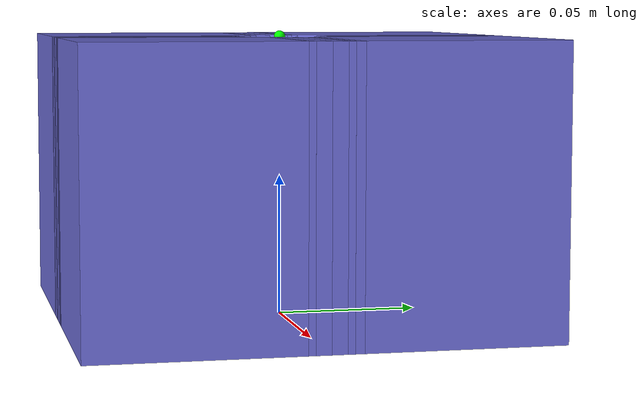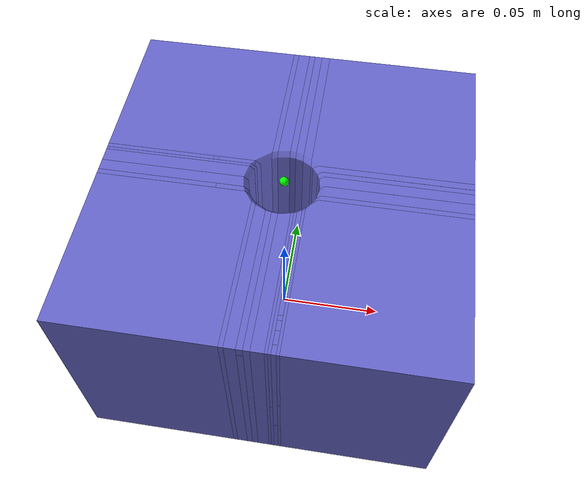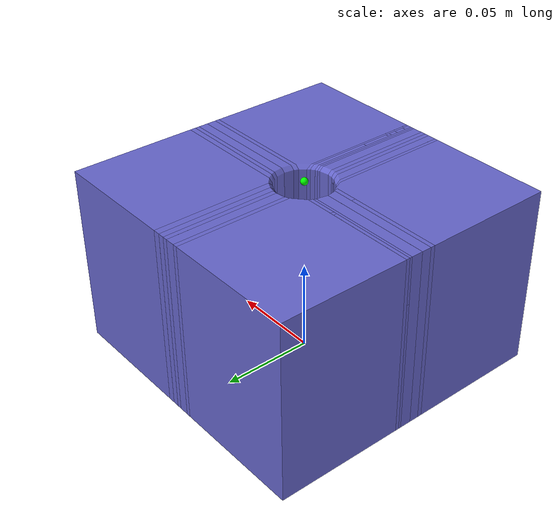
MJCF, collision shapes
<mujoco model="hole_cyl_l_medium">
  <asset>
    <mesh name="hole_cyl_l_medium_visual" file="meshes/hole_cyl_l_medium.stl" scale="0.001 0.001 0.001"/>
    <mesh name="hole_cyl_l_medium_col_0" file="meshes/hole_cyl_l_medium_col_0.stl" scale="0.001 0.001 0.001"/>
    <mesh name="hole_cyl_l_medium_col_1" file="meshes/hole_cyl_l_medium_col_1.stl" scale="0.001 0.001 0.001"/>
    <mesh name="hole_cyl_l_medium_col_2" file="meshes/hole_cyl_l_medium_col_2.stl" scale="0.001 0.001 0.001"/>
    <mesh name="hole_cyl_l_medium_col_3" file="meshes/hole_cyl_l_medium_col_3.stl" scale="0.001 0.001 0.001"/>
    <mesh name="hole_cyl_l_medium_col_4" file="meshes/hole_cyl_l_medium_col_4.stl" scale="0.001 0.001 0.001"/>
    <mesh name="hole_cyl_l_medium_col_5" file="meshes/hole_cyl_l_medium_col_5.stl" scale="0.001 0.001 0.001"/>
    <mesh name="hole_cyl_l_medium_col_6" file="meshes/hole_cyl_l_medium_col_6.stl" scale="0.001 0.001 0.001"/>
    <mesh name="hole_cyl_l_medium_col_7" file="meshes/hole_cyl_l_medium_col_7.stl" scale="0.001 0.001 0.001"/>
    <mesh name="hole_cyl_l_medium_col_8" file="meshes/hole_cyl_l_medium_col_8.stl" scale="0.001 0.001 0.001"/>
    <mesh name="hole_cyl_l_medium_col_9" file="meshes/hole_cyl_l_medium_col_9.stl" scale="0.001 0.001 0.001"/>
    <mesh name="hole_cyl_l_medium_col_10" file="meshes/hole_cyl_l_medium_col_10.stl" scale="0.001 0.001 0.001"/>
    <mesh name="hole_cyl_l_medium_col_11" file="meshes/hole_cyl_l_medium_col_11.stl" scale="0.001 0.001 0.001"/>
    <mesh name="hole_cyl_l_medium_col_12" file="meshes/hole_cyl_l_medium_col_12.stl" scale="0.001 0.001 0.001"/>
    <mesh name="hole_cyl_l_medium_col_13" file="meshes/hole_cyl_l_medium_col_13.stl" scale="0.001 0.001 0.001"/>
    <mesh name="hole_cyl_l_medium_col_14" file="meshes/hole_cyl_l_medium_col_14.stl" scale="0.001 0.001 0.001"/>
    <mesh name="hole_cyl_l_medium_col_15" file="meshes/hole_cyl_l_medium_col_15.stl" scale="0.001 0.001 0.001"/>
    <mesh name="hole_cyl_l_medium_col_16" file="meshes/hole_cyl_l_medium_col_16.stl" scale="0.001 0.001 0.001"/>
    <mesh name="hole_cyl_l_medium_col_17" file="meshes/hole_cyl_l_medium_col_17.stl" scale="0.001 0.001 0.001"/>
    <mesh name="hole_cyl_l_medium_col_18" file="meshes/hole_cyl_l_medium_col_18.stl" scale="0.001 0.001 0.001"/>
    <mesh name="hole_cyl_l_medium_col_19" file="meshes/hole_cyl_l_medium_col_19.stl" scale="0.001 0.001 0.001"/>
    <mesh name="hole_cyl_l_medium_col_20" file="meshes/hole_cyl_l_medium_col_20.stl" scale="0.001 0.001 0.001"/>
    <mesh name="hole_cyl_l_medium_col_21" file="meshes/hole_cyl_l_medium_col_21.stl" scale="0.001 0.001 0.001"/>
    <mesh name="hole_cyl_l_medium_col_22" file="meshes/hole_cyl_l_medium_col_22.stl" scale="0.001 0.001 0.001"/>
    <mesh name="hole_cyl_l_medium_col_23" file="meshes/hole_cyl_l_medium_col_23.stl" scale="0.001 0.001 0.001"/>
    <mesh name="hole_cyl_l_medium_col_24" file="meshes/hole_cyl_l_medium_col_24.stl" scale="0.001 0.001 0.001"/>
    <mesh name="hole_cyl_l_medium_col_25" file="meshes/hole_cyl_l_medium_col_25.stl" scale="0.001 0.001 0.001"/>
    <mesh name="hole_cyl_l_medium_col_26" file="meshes/hole_cyl_l_medium_col_26.stl" scale="0.001 0.001 0.001"/>
    <mesh name="hole_cyl_l_medium_col_27" file="meshes/hole_cyl_l_medium_col_27.stl" scale="0.001 0.001 0.001"/>
    <mesh name="hole_cyl_l_medium_col_28" file="meshes/hole_cyl_l_medium_col_28.stl" scale="0.001 0.001 0.001"/>
    <mesh name="hole_cyl_l_medium_col_29" file="meshes/hole_cyl_l_medium_col_29.stl" scale="0.001 0.001 0.001"/>
    <mesh name="hole_cyl_l_medium_col_30" file="meshes/hole_cyl_l_medium_col_30.stl" scale="0.001 0.001 0.001"/>
    <mesh name="hole_cyl_l_medium_col_31" file="meshes/hole_cyl_l_medium_col_31.stl" scale="0.001 0.001 0.001"/>
    <mesh name="hole_cyl_l_medium_col_32" file="meshes/hole_cyl_l_medium_col_32.stl" scale="0.001 0.001 0.001"/>
    <mesh name="hole_cyl_l_medium_col_33" file="meshes/hole_cyl_l_medium_col_33.stl" scale="0.001 0.001 0.001"/>
    <mesh name="hole_cyl_l_medium_col_34" file="meshes/hole_cyl_l_medium_col_34.stl" scale="0.001 0.001 0.001"/>
    <mesh name="hole_cyl_l_medium_col_35" file="meshes/hole_cyl_l_medium_col_35.stl" scale="0.001 0.001 0.001"/>
    <mesh name="hole_cyl_l_medium_col_36" file="meshes/hole_cyl_l_medium_col_36.stl" scale="0.001 0.001 0.001"/>
    <mesh name="hole_cyl_l_medium_col_37" file="meshes/hole_cyl_l_medium_col_37.stl" scale="0.001 0.001 0.001"/>
    <mesh name="hole_cyl_l_medium_col_38" file="meshes/hole_cyl_l_medium_col_38.stl" scale="0.001 0.001 0.001"/>
    <mesh name="hole_cyl_l_medium_col_39" file="meshes/hole_cyl_l_medium_col_39.stl" scale="0.001 0.001 0.001"/>
    <mesh name="hole_cyl_l_medium_col_40" file="meshes/hole_cyl_l_medium_col_40.stl" scale="0.001 0.001 0.001"/>
    <mesh name="hole_cyl_l_medium_col_41" file="meshes/hole_cyl_l_medium_col_41.stl" scale="0.001 0.001 0.001"/>
    <mesh name="hole_cyl_l_medium_col_42" file="meshes/hole_cyl_l_medium_col_42.stl" scale="0.001 0.001 0.001"/>
    <mesh name="hole_cyl_l_medium_col_43" file="meshes/hole_cyl_l_medium_col_43.stl" scale="0.001 0.001 0.001"/>
    <mesh name="hole_cyl_l_medium_col_44" file="meshes/hole_cyl_l_medium_col_44.stl" scale="0.001 0.001 0.001"/>
    <mesh name="hole_cyl_l_medium_col_45" file="meshes/hole_cyl_l_medium_col_45.stl" scale="0.001 0.001 0.001"/>
    <mesh name="hole_cyl_l_medium_col_46" file="meshes/hole_cyl_l_medium_col_46.stl" scale="0.001 0.001 0.001"/>
    <mesh name="hole_cyl_l_medium_col_47" file="meshes/hole_cyl_l_medium_col_47.stl" scale="0.001 0.001 0.001"/>
    <mesh name="hole_cyl_l_medium_col_48" file="meshes/hole_cyl_l_medium_col_48.stl" scale="0.001 0.001 0.001"/>
    <mesh name="hole_cyl_l_medium_col_49" file="meshes/hole_cyl_l_medium_col_49.stl" scale="0.001 0.001 0.001"/>
    <mesh name="hole_cyl_l_medium_col_50" file="meshes/hole_cyl_l_medium_col_50.stl" scale="0.001 0.001 0.001"/>
    <mesh name="hole_cyl_l_medium_col_51" file="meshes/hole_cyl_l_medium_col_51.stl" scale="0.001 0.001 0.001"/>
    <mesh name="hole_cyl_l_medium_col_52" file="meshes/hole_cyl_l_medium_col_52.stl" scale="0.001 0.001 0.001"/>
    <mesh name="hole_cyl_l_medium_col_53" file="meshes/hole_cyl_l_medium_col_53.stl" scale="0.001 0.001 0.001"/>
    <mesh name="hole_cyl_l_medium_col_54" file="meshes/hole_cyl_l_medium_col_54.stl" scale="0.001 0.001 0.001"/>
  </asset>

  <worldbody>
    <body name="fixture" pos="0 0 0">
      <geom name="hole_cyl_l_medium_visual" type="mesh" mesh="hole_cyl_l_medium_visual"
            contype="0" conaffinity="0"
            rgba="0.4 0.4 0.8 1.0"/>
      <geom name="hole_cyl_l_medium_col_0" type="mesh" mesh="hole_cyl_l_medium_col_0"
            rgba="0.4 0.4 0.8 0.0"
            friction="0.2 0.005 0.0001"
            solref="0.02 1"
            solimp="0.9 0.95 0.001"/>
      <geom name="hole_cyl_l_medium_col_1" type="mesh" mesh="hole_cyl_l_medium_col_1"
            rgba="0.4 0.4 0.8 0.0"
            friction="0.2 0.005 0.0001"
            solref="0.02 1"
            solimp="0.9 0.95 0.001"/>
      <geom name="hole_cyl_l_medium_col_2" type="mesh" mesh="hole_cyl_l_medium_col_2"
            rgba="0.4 0.4 0.8 0.0"
            friction="0.2 0.005 0.0001"
            solref="0.02 1"
            solimp="0.9 0.95 0.001"/>
      <geom name="hole_cyl_l_medium_col_3" type="mesh" mesh="hole_cyl_l_medium_col_3"
            rgba="0.4 0.4 0.8 0.0"
            friction="0.2 0.005 0.0001"
            solref="0.02 1"
            solimp="0.9 0.95 0.001"/>
      <geom name="hole_cyl_l_medium_col_4" type="mesh" mesh="hole_cyl_l_medium_col_4"
            rgba="0.4 0.4 0.8 0.0"
            friction="0.2 0.005 0.0001"
            solref="0.02 1"
            solimp="0.9 0.95 0.001"/>
      <geom name="hole_cyl_l_medium_col_5" type="mesh" mesh="hole_cyl_l_medium_col_5"
            rgba="0.4 0.4 0.8 0.0"
            friction="0.2 0.005 0.0001"
            solref="0.02 1"
            solimp="0.9 0.95 0.001"/>
      <geom name="hole_cyl_l_medium_col_6" type="mesh" mesh="hole_cyl_l_medium_col_6"
            rgba="0.4 0.4 0.8 0.0"
            friction="0.2 0.005 0.0001"
            solref="0.02 1"
            solimp="0.9 0.95 0.001"/>
      <geom name="hole_cyl_l_medium_col_7" type="mesh" mesh="hole_cyl_l_medium_col_7"
            rgba="0.4 0.4 0.8 0.0"
            friction="0.2 0.005 0.0001"
            solref="0.02 1"
            solimp="0.9 0.95 0.001"/>
      <geom name="hole_cyl_l_medium_col_8" type="mesh" mesh="hole_cyl_l_medium_col_8"
            rgba="0.4 0.4 0.8 0.0"
            friction="0.2 0.005 0.0001"
            solref="0.02 1"
            solimp="0.9 0.95 0.001"/>
      <geom name="hole_cyl_l_medium_col_9" type="mesh" mesh="hole_cyl_l_medium_col_9"
            rgba="0.4 0.4 0.8 0.0"
            friction="0.2 0.005 0.0001"
            solref="0.02 1"
            solimp="0.9 0.95 0.001"/>
      <geom name="hole_cyl_l_medium_col_10" type="mesh" mesh="hole_cyl_l_medium_col_10"
            rgba="0.4 0.4 0.8 0.0"
            friction="0.2 0.005 0.0001"
            solref="0.02 1"
            solimp="0.9 0.95 0.001"/>
      <geom name="hole_cyl_l_medium_col_11" type="mesh" mesh="hole_cyl_l_medium_col_11"
            rgba="0.4 0.4 0.8 0.0"
            friction="0.2 0.005 0.0001"
            solref="0.02 1"
            solimp="0.9 0.95 0.001"/>
      <geom name="hole_cyl_l_medium_col_12" type="mesh" mesh="hole_cyl_l_medium_col_12"
            rgba="0.4 0.4 0.8 0.0"
            friction="0.2 0.005 0.0001"
            solref="0.02 1"
            solimp="0.9 0.95 0.001"/>
      <geom name="hole_cyl_l_medium_col_13" type="mesh" mesh="hole_cyl_l_medium_col_13"
            rgba="0.4 0.4 0.8 0.0"
            friction="0.2 0.005 0.0001"
            solref="0.02 1"
            solimp="0.9 0.95 0.001"/>
      <geom name="hole_cyl_l_medium_col_14" type="mesh" mesh="hole_cyl_l_medium_col_14"
            rgba="0.4 0.4 0.8 0.0"
            friction="0.2 0.005 0.0001"
            solref="0.02 1"
            solimp="0.9 0.95 0.001"/>
      <geom name="hole_cyl_l_medium_col_15" type="mesh" mesh="hole_cyl_l_medium_col_15"
            rgba="0.4 0.4 0.8 0.0"
            friction="0.2 0.005 0.0001"
            solref="0.02 1"
            solimp="0.9 0.95 0.001"/>
      <geom name="hole_cyl_l_medium_col_16" type="mesh" mesh="hole_cyl_l_medium_col_16"
            rgba="0.4 0.4 0.8 0.0"
            friction="0.2 0.005 0.0001"
            solref="0.02 1"
            solimp="0.9 0.95 0.001"/>
      <geom name="hole_cyl_l_medium_col_17" type="mesh" mesh="hole_cyl_l_medium_col_17"
            rgba="0.4 0.4 0.8 0.0"
            friction="0.2 0.005 0.0001"
            solref="0.02 1"
            solimp="0.9 0.95 0.001"/>
      <geom name="hole_cyl_l_medium_col_18" type="mesh" mesh="hole_cyl_l_medium_col_18"
            rgba="0.4 0.4 0.8 0.0"
            friction="0.2 0.005 0.0001"
            solref="0.02 1"
            solimp="0.9 0.95 0.001"/>
      <geom name="hole_cyl_l_medium_col_19" type="mesh" mesh="hole_cyl_l_medium_col_19"
            rgba="0.4 0.4 0.8 0.0"
            friction="0.2 0.005 0.0001"
            solref="0.02 1"
            solimp="0.9 0.95 0.001"/>
      <geom name="hole_cyl_l_medium_col_20" type="mesh" mesh="hole_cyl_l_medium_col_20"
            rgba="0.4 0.4 0.8 0.0"
            friction="0.2 0.005 0.0001"
            solref="0.02 1"
            solimp="0.9 0.95 0.001"/>
      <geom name="hole_cyl_l_medium_col_21" type="mesh" mesh="hole_cyl_l_medium_col_21"
            rgba="0.4 0.4 0.8 0.0"
            friction="0.2 0.005 0.0001"
            solref="0.02 1"
            solimp="0.9 0.95 0.001"/>
      <geom name="hole_cyl_l_medium_col_22" type="mesh" mesh="hole_cyl_l_medium_col_22"
            rgba="0.4 0.4 0.8 0.0"
            friction="0.2 0.005 0.0001"
            solref="0.02 1"
            solimp="0.9 0.95 0.001"/>
      <geom name="hole_cyl_l_medium_col_23" type="mesh" mesh="hole_cyl_l_medium_col_23"
            rgba="0.4 0.4 0.8 0.0"
            friction="0.2 0.005 0.0001"
            solref="0.02 1"
            solimp="0.9 0.95 0.001"/>
      <geom name="hole_cyl_l_medium_col_24" type="mesh" mesh="hole_cyl_l_medium_col_24"
            rgba="0.4 0.4 0.8 0.0"
            friction="0.2 0.005 0.0001"
            solref="0.02 1"
            solimp="0.9 0.95 0.001"/>
      <geom name="hole_cyl_l_medium_col_25" type="mesh" mesh="hole_cyl_l_medium_col_25"
            rgba="0.4 0.4 0.8 0.0"
            friction="0.2 0.005 0.0001"
            solref="0.02 1"
            solimp="0.9 0.95 0.001"/>
      <geom name="hole_cyl_l_medium_col_26" type="mesh" mesh="hole_cyl_l_medium_col_26"
            rgba="0.4 0.4 0.8 0.0"
            friction="0.2 0.005 0.0001"
            solref="0.02 1"
            solimp="0.9 0.95 0.001"/>
      <geom name="hole_cyl_l_medium_col_27" type="mesh" mesh="hole_cyl_l_medium_col_27"
            rgba="0.4 0.4 0.8 0.0"
            friction="0.2 0.005 0.0001"
            solref="0.02 1"
            solimp="0.9 0.95 0.001"/>
      <geom name="hole_cyl_l_medium_col_28" type="mesh" mesh="hole_cyl_l_medium_col_28"
            rgba="0.4 0.4 0.8 0.0"
            friction="0.2 0.005 0.0001"
            solref="0.02 1"
            solimp="0.9 0.95 0.001"/>
      <geom name="hole_cyl_l_medium_col_29" type="mesh" mesh="hole_cyl_l_medium_col_29"
            rgba="0.4 0.4 0.8 0.0"
            friction="0.2 0.005 0.0001"
            solref="0.02 1"
            solimp="0.9 0.95 0.001"/>
      <geom name="hole_cyl_l_medium_col_30" type="mesh" mesh="hole_cyl_l_medium_col_30"
            rgba="0.4 0.4 0.8 0.0"
            friction="0.2 0.005 0.0001"
            solref="0.02 1"
            solimp="0.9 0.95 0.001"/>
      <geom name="hole_cyl_l_medium_col_31" type="mesh" mesh="hole_cyl_l_medium_col_31"
            rgba="0.4 0.4 0.8 0.0"
            friction="0.2 0.005 0.0001"
            solref="0.02 1"
            solimp="0.9 0.95 0.001"/>
      <geom name="hole_cyl_l_medium_col_32" type="mesh" mesh="hole_cyl_l_medium_col_32"
            rgba="0.4 0.4 0.8 0.0"
            friction="0.2 0.005 0.0001"
            solref="0.02 1"
            solimp="0.9 0.95 0.001"/>
      <geom name="hole_cyl_l_medium_col_33" type="mesh" mesh="hole_cyl_l_medium_col_33"
            rgba="0.4 0.4 0.8 0.0"
            friction="0.2 0.005 0.0001"
            solref="0.02 1"
            solimp="0.9 0.95 0.001"/>
      <geom name="hole_cyl_l_medium_col_34" type="mesh" mesh="hole_cyl_l_medium_col_34"
            rgba="0.4 0.4 0.8 0.0"
            friction="0.2 0.005 0.0001"
            solref="0.02 1"
            solimp="0.9 0.95 0.001"/>
      <geom name="hole_cyl_l_medium_col_35" type="mesh" mesh="hole_cyl_l_medium_col_35"
            rgba="0.4 0.4 0.8 0.0"
            friction="0.2 0.005 0.0001"
            solref="0.02 1"
            solimp="0.9 0.95 0.001"/>
      <geom name="hole_cyl_l_medium_col_36" type="mesh" mesh="hole_cyl_l_medium_col_36"
            rgba="0.4 0.4 0.8 0.0"
            friction="0.2 0.005 0.0001"
            solref="0.02 1"
            solimp="0.9 0.95 0.001"/>
      <geom name="hole_cyl_l_medium_col_37" type="mesh" mesh="hole_cyl_l_medium_col_37"
            rgba="0.4 0.4 0.8 0.0"
            friction="0.2 0.005 0.0001"
            solref="0.02 1"
            solimp="0.9 0.95 0.001"/>
      <geom name="hole_cyl_l_medium_col_38" type="mesh" mesh="hole_cyl_l_medium_col_38"
            rgba="0.4 0.4 0.8 0.0"
            friction="0.2 0.005 0.0001"
            solref="0.02 1"
            solimp="0.9 0.95 0.001"/>
      <geom name="hole_cyl_l_medium_col_39" type="mesh" mesh="hole_cyl_l_medium_col_39"
            rgba="0.4 0.4 0.8 0.0"
            friction="0.2 0.005 0.0001"
            solref="0.02 1"
            solimp="0.9 0.95 0.001"/>
      <geom name="hole_cyl_l_medium_col_40" type="mesh" mesh="hole_cyl_l_medium_col_40"
            rgba="0.4 0.4 0.8 0.0"
            friction="0.2 0.005 0.0001"
            solref="0.02 1"
            solimp="0.9 0.95 0.001"/>
      <geom name="hole_cyl_l_medium_col_41" type="mesh" mesh="hole_cyl_l_medium_col_41"
            rgba="0.4 0.4 0.8 0.0"
            friction="0.2 0.005 0.0001"
            solref="0.02 1"
            solimp="0.9 0.95 0.001"/>
      <geom name="hole_cyl_l_medium_col_42" type="mesh" mesh="hole_cyl_l_medium_col_42"
            rgba="0.4 0.4 0.8 0.0"
            friction="0.2 0.005 0.0001"
            solref="0.02 1"
            solimp="0.9 0.95 0.001"/>
      <geom name="hole_cyl_l_medium_col_43" type="mesh" mesh="hole_cyl_l_medium_col_43"
            rgba="0.4 0.4 0.8 0.0"
            friction="0.2 0.005 0.0001"
            solref="0.02 1"
            solimp="0.9 0.95 0.001"/>
      <geom name="hole_cyl_l_medium_col_44" type="mesh" mesh="hole_cyl_l_medium_col_44"
            rgba="0.4 0.4 0.8 0.0"
            friction="0.2 0.005 0.0001"
            solref="0.02 1"
            solimp="0.9 0.95 0.001"/>
      <geom name="hole_cyl_l_medium_col_45" type="mesh" mesh="hole_cyl_l_medium_col_45"
            rgba="0.4 0.4 0.8 0.0"
            friction="0.2 0.005 0.0001"
            solref="0.02 1"
            solimp="0.9 0.95 0.001"/>
      <geom name="hole_cyl_l_medium_col_46" type="mesh" mesh="hole_cyl_l_medium_col_46"
            rgba="0.4 0.4 0.8 0.0"
            friction="0.2 0.005 0.0001"
            solref="0.02 1"
            solimp="0.9 0.95 0.001"/>
      <geom name="hole_cyl_l_medium_col_47" type="mesh" mesh="hole_cyl_l_medium_col_47"
            rgba="0.4 0.4 0.8 0.0"
            friction="0.2 0.005 0.0001"
            solref="0.02 1"
            solimp="0.9 0.95 0.001"/>
      <geom name="hole_cyl_l_medium_col_48" type="mesh" mesh="hole_cyl_l_medium_col_48"
            rgba="0.4 0.4 0.8 0.0"
            friction="0.2 0.005 0.0001"
            solref="0.02 1"
            solimp="0.9 0.95 0.001"/>
      <geom name="hole_cyl_l_medium_col_49" type="mesh" mesh="hole_cyl_l_medium_col_49"
            rgba="0.4 0.4 0.8 0.0"
            friction="0.2 0.005 0.0001"
            solref="0.02 1"
            solimp="0.9 0.95 0.001"/>
      <geom name="hole_cyl_l_medium_col_50" type="mesh" mesh="hole_cyl_l_medium_col_50"
            rgba="0.4 0.4 0.8 0.0"
            friction="0.2 0.005 0.0001"
            solref="0.02 1"
            solimp="0.9 0.95 0.001"/>
      <geom name="hole_cyl_l_medium_col_51" type="mesh" mesh="hole_cyl_l_medium_col_51"
            rgba="0.4 0.4 0.8 0.0"
            friction="0.2 0.005 0.0001"
            solref="0.02 1"
            solimp="0.9 0.95 0.001"/>
      <geom name="hole_cyl_l_medium_col_52" type="mesh" mesh="hole_cyl_l_medium_col_52"
            rgba="0.4 0.4 0.8 0.0"
            friction="0.2 0.005 0.0001"
            solref="0.02 1"
            solimp="0.9 0.95 0.001"/>
      <geom name="hole_cyl_l_medium_col_53" type="mesh" mesh="hole_cyl_l_medium_col_53"
            rgba="0.4 0.4 0.8 0.0"
            friction="0.2 0.005 0.0001"
            solref="0.02 1"
            solimp="0.9 0.95 0.001"/>
      <geom name="hole_cyl_l_medium_col_54" type="mesh" mesh="hole_cyl_l_medium_col_54"
            rgba="0.4 0.4 0.8 0.0"
            friction="0.2 0.005 0.0001"
            solref="0.02 1"
            solimp="0.9 0.95 0.001"/>

      <site name="hole_entrance" pos="0 0 0.1" size="0.002" rgba="0 1 0 1"/>
      <site name="hole_bottom"   pos="0 0 0.0" size="0.002" rgba="0 0 1 1"/>
    </body>
  </worldbody>
</mujoco>
